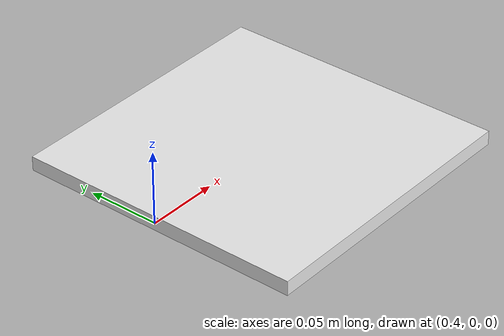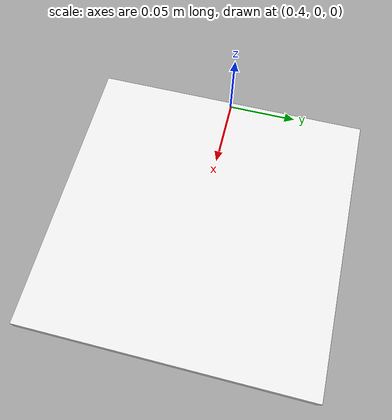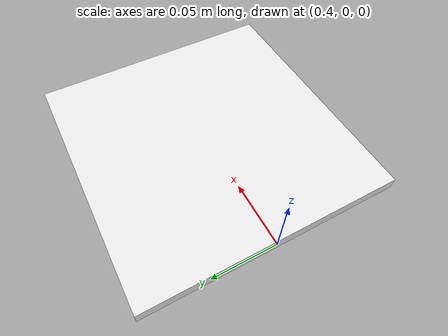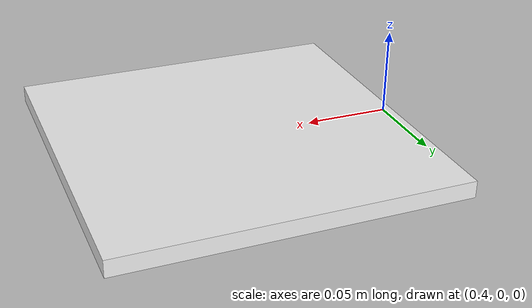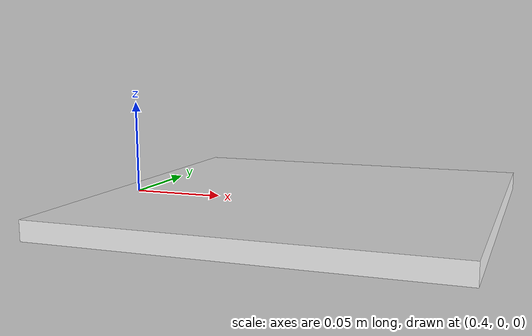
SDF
<?xml version='1.0'?>
<sdf version='1.6'>
  <model name='aruco_marker_0'>
    <static>true</static>
    <link name='link'>
      <pose>0.5 0 0 0 0 0</pose>
      <collision name='collision'>
        <geometry>
          <box><size>0.2 0.2 0.01</size></box>
        </geometry>
      </collision>
      <visual name='visual'>
        <geometry>
          <box><size>0.2 0.2 0.01</size></box>
        </geometry>
        <material>
          <script>
            <uri>file://media/materials/scripts/gazebo.material</uri>
            <name>Gazebo/White</name>
          </script>
        </material>
      </visual>
    </link>
  </model>
</sdf>
